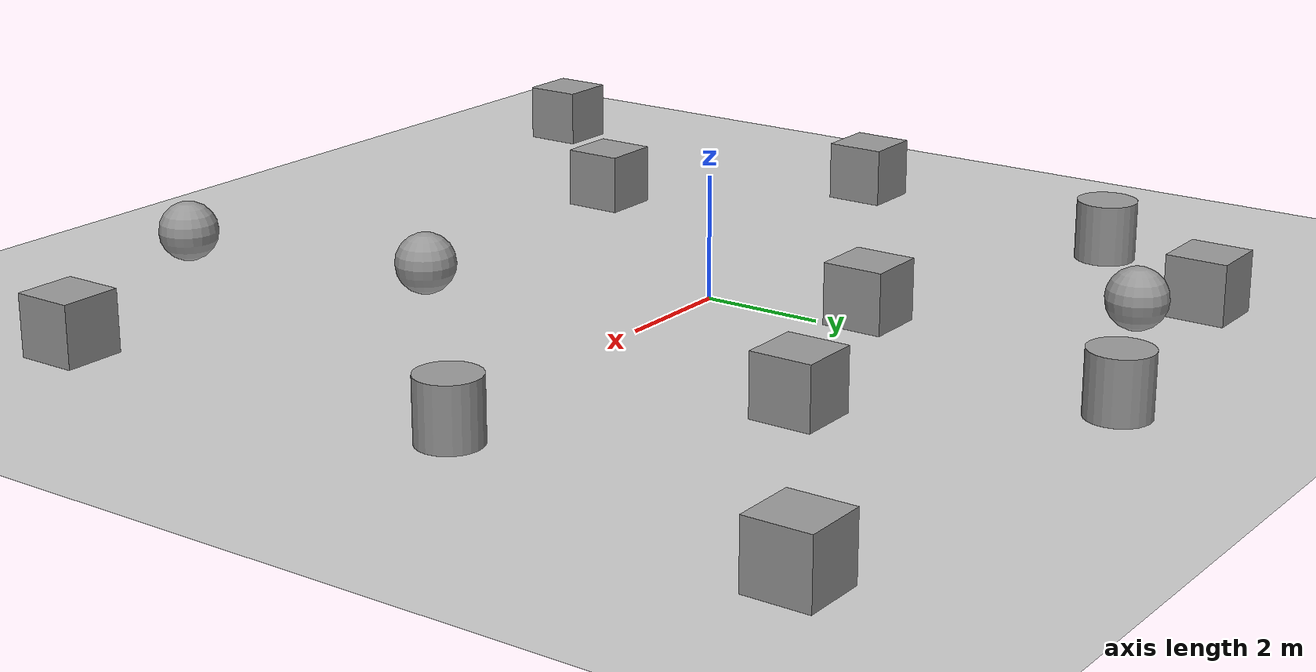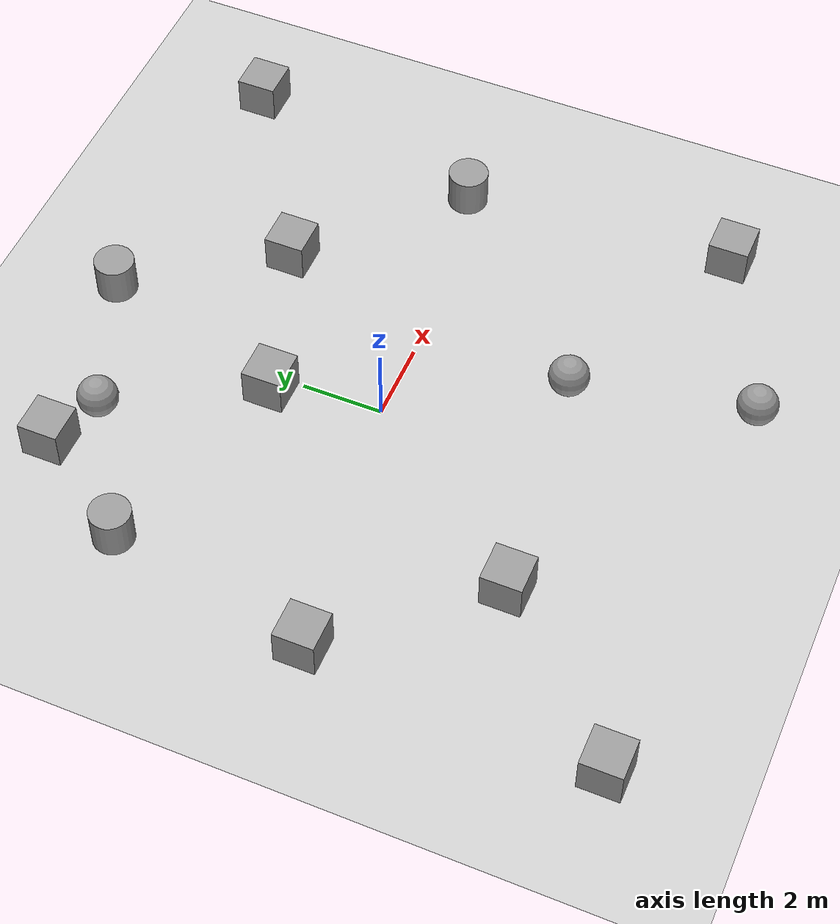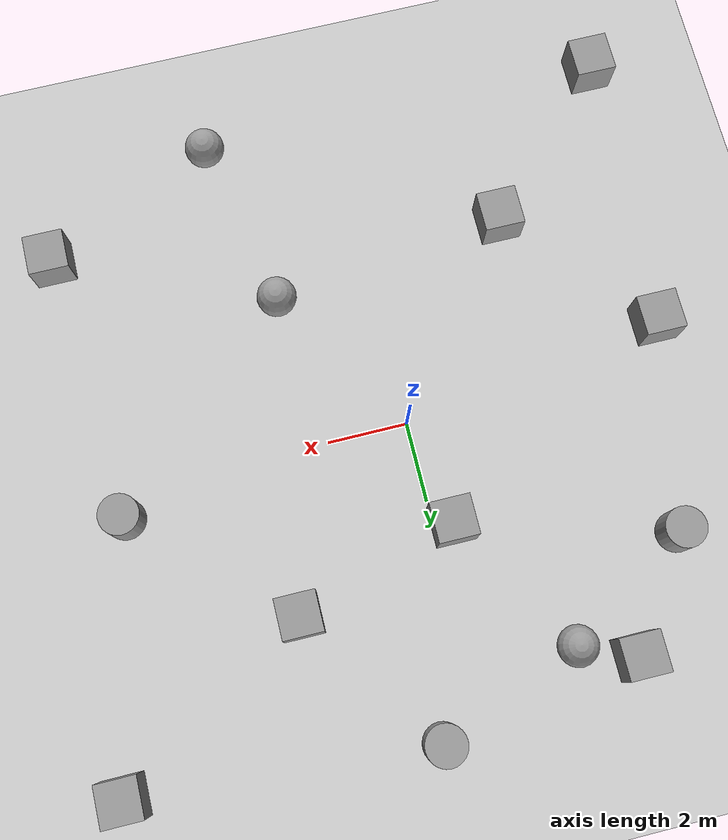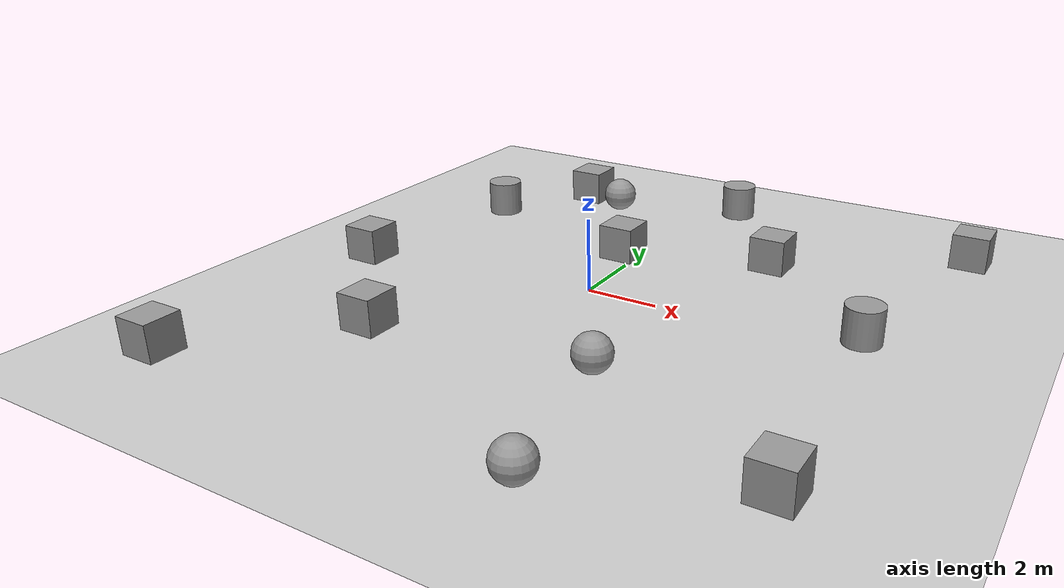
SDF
<sdf version="1.6">
 <world name="default">
  <light name="sun" type="directional">
   <pose>0 0 10 0 -0 0</pose>
   <diffuse>0.8 0.8 0.8 1</diffuse>
   <specular>0.1 0.1 0.1 1</specular>
   <attenuation>
    <range>1000</range>
    <constant>0.9</constant>
    <linear>0.01</linear>
    <quadratic>0.001</quadratic>
   </attenuation>
   <direction>-0.5 0.5 -1</direction>
  </light>
  <model name="ground_plane">
   <static>1</static>
   <link name="link">
    <collision name="collision">
     <geometry><plane><normal>0 0 1</normal><size>100 100</size></plane></geometry>
     <surface><friction><ode><mu>100</mu><mu2>50</mu2></ode></friction></surface>
    </collision>
    <visual name="visual">
     <cast_shadows>0</cast_shadows>
     <geometry><plane><normal>0 0 1</normal><size>100 100</size></plane></geometry>
     <material>
      <script><uri>file://media/materials/scripts/gazebo.material</uri><name>Gazebo/Grey</name></script>
     </material>
    </visual>
   </link>
  </model>
  <gravity>0 0 -9.8</gravity>
  <magnetic_field>6e-06 2.3e-05 -4.2e-05</magnetic_field>
  <atmosphere type="adiabatic"/>
  <physics name="default_physics" default="0" type="ode">
   <max_step_size>0.001</max_step_size>
   <real_time_factor>1</real_time_factor>
   <real_time_update_rate>1000</real_time_update_rate>
  </physics>
  <scene><ambient>0.4 0.4 0.4 1</ambient><background>0.7 0.7 0.7 1</background><shadows>1</shadows></scene>
  <spherical_coordinates>
   <surface_model>EARTH_WGS84</surface_model>
   <latitude_deg>0</latitude_deg>
   <longitude_deg>0</longitude_deg>
   <elevation>0</elevation>
   <heading_deg>0</heading_deg>
  </spherical_coordinates>
  <model name="unit_box_0_22">
   <pose>-3.55961 -4.61745 0.499995 0 1e-05 0</pose>
   <link name="link">
    <inertial>
     <mass>1</mass>
     <inertia>
      <ixx>0.166667</ixx>
      <ixy>0</ixy>
      <ixz>0</ixz>
      <iyy>0.166667</iyy>
      <iyz>0</iyz>
      <izz>0.166667</izz>
     </inertia>
    </inertial>
    <collision name="collision"><geometry><box><size>1 1 1</size></box></geometry></collision>
    <visual name="visual">
     <geometry><box><size>1 1 1</size></box></geometry>
     <material>
      <script><name>Gazebo/Grey</name><uri>file://media/materials/scripts/gazebo.material</uri></script>
     </material>
    </visual>
   </link>
  </model>
  <model name="unit_sphere_0_4">
   <pose>2.40073 -3.83098 0.5 0 -0 0</pose>
   <link name="link">
    <inertial>
     <mass>1</mass>
     <inertia><ixx>0.1</ixx><ixy>0</ixy><ixz>0</ixz><iyy>0.1</iyy><iyz>0</iyz><izz>0.1</izz></inertia>
    </inertial>
    <collision name="collision"><geometry><sphere><radius>0.5</radius></sphere></geometry></collision>
    <visual name="visual">
     <geometry><sphere><radius>0.5</radius></sphere></geometry>
     <material>
      <script><name>Gazebo/Grey</name><uri>file://media/materials/scripts/gazebo.material</uri></script>
     </material>
    </visual>
   </link>
  </model>
  <model name="unit_cylinder_0_4">
   <pose>1.04869 7.56504 0.499998 3e-06 -3e-06 0</pose>
   <link name="link">
    <inertial>
     <mass>1</mass>
     <inertia><ixx>0.145833</ixx><ixy>0</ixy><ixz>0</ixz><iyy>0.145833</iyy><iyz>0</iyz><izz>0.125</izz></inertia>
    </inertial>
    <collision name="collision">
     <geometry><cylinder><radius>0.5</radius><length>1</length></cylinder></geometry>
    </collision>
    <visual name="visual">
     <geometry><cylinder><radius>0.5</radius><length>1</length></cylinder></geometry>
     <material>
      <script><name>Gazebo/Grey</name><uri>file://media/materials/scripts/gazebo.material</uri></script>
     </material>
    </visual>
   </link>
  </model>
  <model name="unit_sphere_0_5">
   <pose>-2.52344 6.16454 0.5 0 -0 0</pose>
   <link name="link">
    <inertial>
     <mass>1</mass>
     <inertia><ixx>0.1</ixx><ixy>0</ixy><ixz>0</ixz><iyy>0.1</iyy><iyz>0</iyz><izz>0.1</izz></inertia>
    </inertial>
    <collision name="collision"><geometry><sphere><radius>0.5</radius></sphere></geometry></collision>
    <visual name="visual">
     <geometry><sphere><radius>0.5</radius></sphere></geometry>
     <material>
      <script><name>Gazebo/Grey</name><uri>file://media/materials/scripts/gazebo.material</uri></script>
     </material>
    </visual>
   </link>
  </model>
  <model name="unit_box_0_23">
   <pose>-3.86799 6.72056 0.499995 0 1e-05 0</pose>
   <link name="link">
    <inertial>
     <mass>1</mass>
     <inertia>
      <ixx>0.166667</ixx>
      <ixy>0</ixy>
      <ixz>0</ixz>
      <iyy>0.166667</iyy>
      <iyz>0</iyz>
      <izz>0.166667</izz>
     </inertia>
    </inertial>
    <collision name="collision"><geometry><box><size>1 1 1</size></box></geometry></collision>
    <visual name="visual">
     <geometry><box><size>1 1 1</size></box></geometry>
     <material>
      <script><name>Gazebo/Grey</name><uri>file://media/materials/scripts/gazebo.material</uri></script>
     </material>
    </visual>
   </link>
  </model>
  <model name="unit_box_0_24">
   <pose>-6.99256 -8.17791 0.499995 -1e-05 0 0</pose>
   <link name="link">
    <inertial>
     <mass>1</mass>
     <inertia>
      <ixx>0.166667</ixx>
      <ixy>0</ixy>
      <ixz>0</ixz>
      <iyy>0.166667</iyy>
      <iyz>0</iyz>
      <izz>0.166667</izz>
     </inertia>
    </inertial>
    <collision name="collision"><geometry><box><size>1 1 1</size></box></geometry></collision>
    <visual name="visual">
     <geometry><box><size>1 1 1</size></box></geometry>
     <material>
      <script><name>Gazebo/Grey</name><uri>file://media/materials/scripts/gazebo.material</uri></script>
     </material>
    </visual>
   </link>
  </model>
  <model name="unit_box_0_25">
   <pose>-0.442609 2.65501 0.499995 0 1e-05 0</pose>
   <link name="link">
    <inertial>
     <mass>1</mass>
     <inertia>
      <ixx>0.166667</ixx>
      <ixy>0</ixy>
      <ixz>0</ixz>
      <iyy>0.166667</iyy>
      <iyz>0</iyz>
      <izz>0.166667</izz>
     </inertia>
    </inertial>
    <collision name="collision"><geometry><box><size>1 1 1</size></box></geometry></collision>
    <visual name="visual">
     <geometry><box><size>1 1 1</size></box></geometry>
     <material>
      <script><name>Gazebo/Grey</name><uri>file://media/materials/scripts/gazebo.material</uri></script>
     </material>
    </visual>
   </link>
  </model>
  <model name="unit_box_0_26">
   <pose>-6.66997 -1.0581 0.499995 -1e-05 0 0</pose>
   <link name="link">
    <inertial>
     <mass>1</mass>
     <inertia>
      <ixx>0.166667</ixx>
      <ixy>0</ixy>
      <ixz>0</ixz>
      <iyy>0.166667</iyy>
      <iyz>0</iyz>
      <izz>0.166667</izz>
     </inertia>
    </inertial>
    <collision name="collision"><geometry><box><size>1 1 1</size></box></geometry></collision>
    <visual name="visual">
     <geometry><box><size>1 1 1</size></box></geometry>
     <material>
      <script><name>Gazebo/Grey</name><uri>file://media/materials/scripts/gazebo.material</uri></script>
     </material>
    </visual>
   </link>
  </model>
  <model name="unit_box_0_27">
   <pose>7.7272 -6.16816 0.499995 -1e-05 0 0</pose>
   <link name="link">
    <inertial>
     <mass>1</mass>
     <inertia>
      <ixx>0.166667</ixx>
      <ixy>0</ixy>
      <ixz>0</ixz>
      <iyy>0.166667</iyy>
      <iyz>0</iyz>
      <izz>0.166667</izz>
     </inertia>
    </inertial>
    <collision name="collision"><geometry><box><size>1 1 1</size></box></geometry></collision>
    <visual name="visual">
     <geometry><box><size>1 1 1</size></box></geometry>
     <material>
      <script><name>Gazebo/Grey</name><uri>file://media/materials/scripts/gazebo.material</uri></script>
     </material>
    </visual>
   </link>
  </model>
  <model name="unit_sphere_0_6">
   <pose>3.3206 -8.21137 0.5 0 -0 0</pose>
   <link name="link">
    <inertial>
     <mass>1</mass>
     <inertia><ixx>0.1</ixx><ixy>0</ixy><ixz>0</ixz><iyy>0.1</iyy><iyz>0</iyz><izz>0.1</izz></inertia>
    </inertial>
    <collision name="collision"><geometry><sphere><radius>0.5</radius></sphere></geometry></collision>
    <visual name="visual">
     <geometry><sphere><radius>0.5</radius></sphere></geometry>
     <material>
      <script><name>Gazebo/Grey</name><uri>file://media/materials/scripts/gazebo.material</uri></script>
     </material>
    </visual>
   </link>
  </model>
  <model name="unit_cylinder_0_5">
   <pose>7.2037 0.697416 0.499998 3e-06 -4e-06 0</pose>
   <link name="link">
    <inertial>
     <mass>1</mass>
     <inertia><ixx>0.145833</ixx><ixy>0</ixy><ixz>0</ixz><iyy>0.145833</iyy><iyz>0</iyz><izz>0.125</izz></inertia>
    </inertial>
    <collision name="collision">
     <geometry><cylinder><radius>0.5</radius><length>1</length></cylinder></geometry>
    </collision>
    <visual name="visual">
     <geometry><cylinder><radius>0.5</radius><length>1</length></cylinder></geometry>
     <material>
      <script><name>Gazebo/Grey</name><uri>file://media/materials/scripts/gazebo.material</uri></script>
     </material>
    </visual>
   </link>
  </model>
  <model name="unit_box_0_28">
   <pose>8.4142 7.0049 0.499995 1e-05 -0 0</pose>
   <link name="link">
    <inertial>
     <mass>1</mass>
     <inertia>
      <ixx>0.166667</ixx>
      <ixy>0</ixy>
      <ixz>0</ixz>
      <iyy>0.166667</iyy>
      <iyz>0</iyz>
      <izz>0.166667</izz>
     </inertia>
    </inertial>
    <collision name="collision"><geometry><box><size>1 1 1</size></box></geometry></collision>
    <visual name="visual">
     <geometry><box><size>1 1 1</size></box></geometry>
     <material>
      <script><name>Gazebo/Grey</name><uri>file://media/materials/scripts/gazebo.material</uri></script>
     </material>
    </visual>
   </link>
  </model>
  <model name="unit_cylinder_0_6">
   <pose>-5.6614 4.13724 0.499998 3e-06 4e-06 -0</pose>
   <link name="link">
    <inertial>
     <mass>1</mass>
     <inertia><ixx>0.145833</ixx><ixy>0</ixy><ixz>0</ixz><iyy>0.145833</iyy><iyz>0</iyz><izz>0.125</izz></inertia>
    </inertial>
    <collision name="collision">
     <geometry><cylinder><radius>0.5</radius><length>1</length></cylinder></geometry>
    </collision>
    <visual name="visual">
     <geometry><cylinder><radius>0.5</radius><length>1</length></cylinder></geometry>
     <material>
      <script><name>Gazebo/Grey</name><uri>file://media/materials/scripts/gazebo.material</uri></script>
     </material>
    </visual>
   </link>
  </model>
  <model name="unit_box_0_29">
   <pose>3.61354 3.96496 0.499995 0 -1e-05 0</pose>
   <link name="link">
    <inertial>
     <mass>1</mass>
     <inertia>
      <ixx>0.166667</ixx>
      <ixy>0</ixy>
      <ixz>0</ixz>
      <iyy>0.166667</iyy>
      <iyz>0</iyz>
      <izz>0.166667</izz>
     </inertia>
    </inertial>
    <collision name="collision"><geometry><box><size>1 1 1</size></box></geometry></collision>
    <visual name="visual">
     <geometry><box><size>1 1 1</size></box></geometry>
     <material>
      <script><name>Gazebo/Grey</name><uri>file://media/materials/scripts/gazebo.material</uri></script>
     </material>
    </visual>
   </link>
  </model>
 </world>
</sdf>
